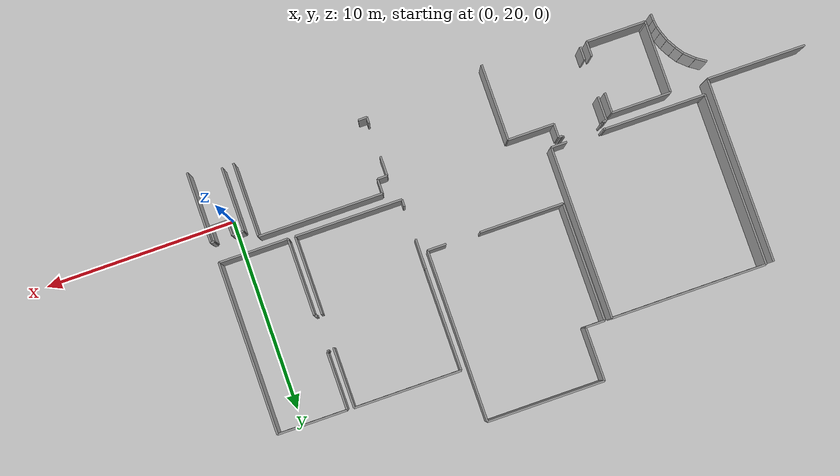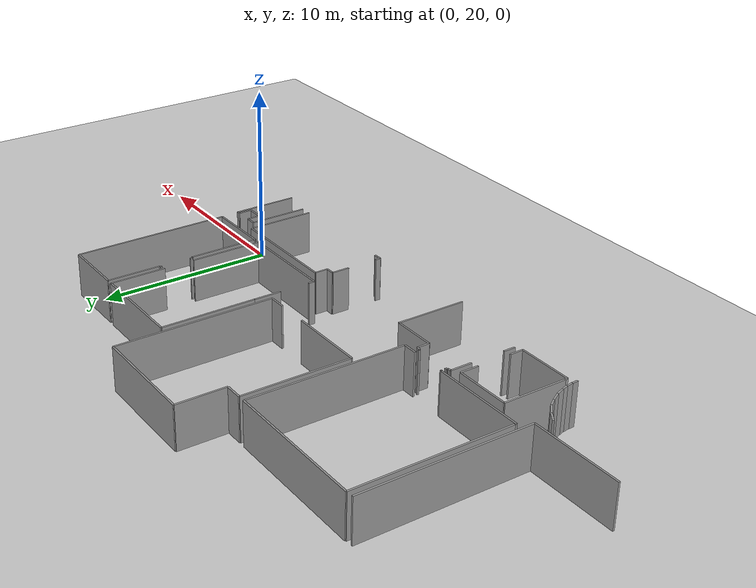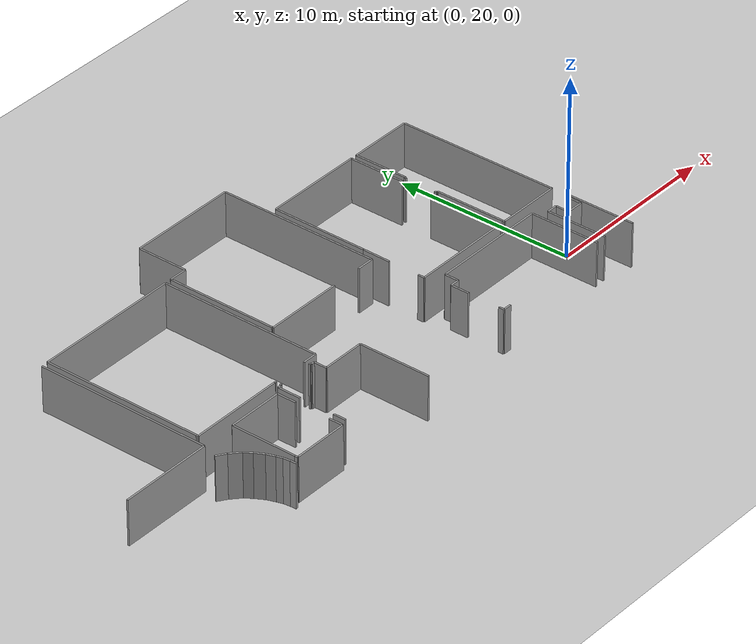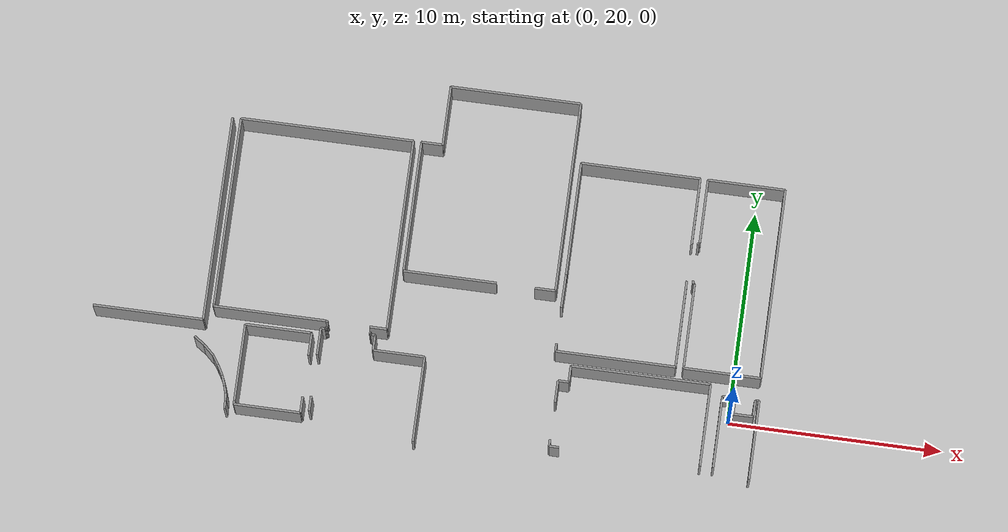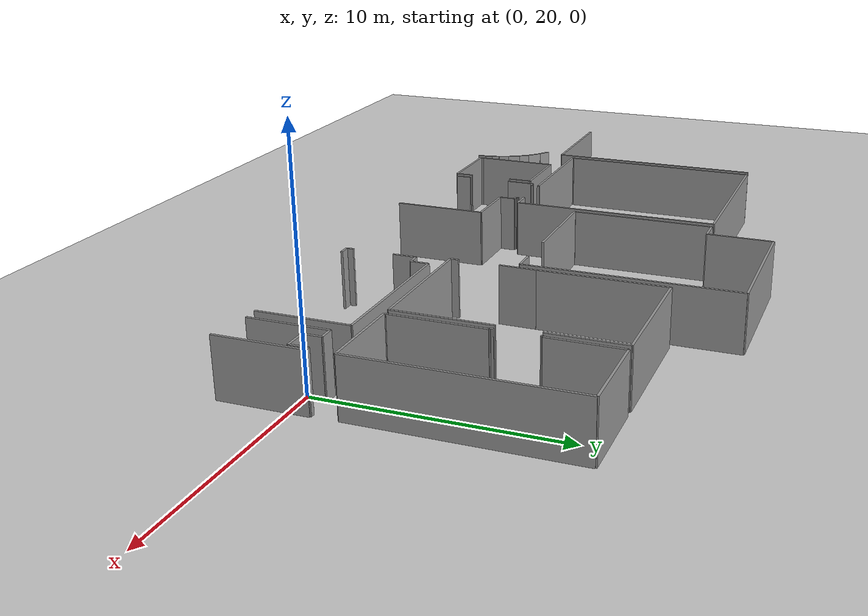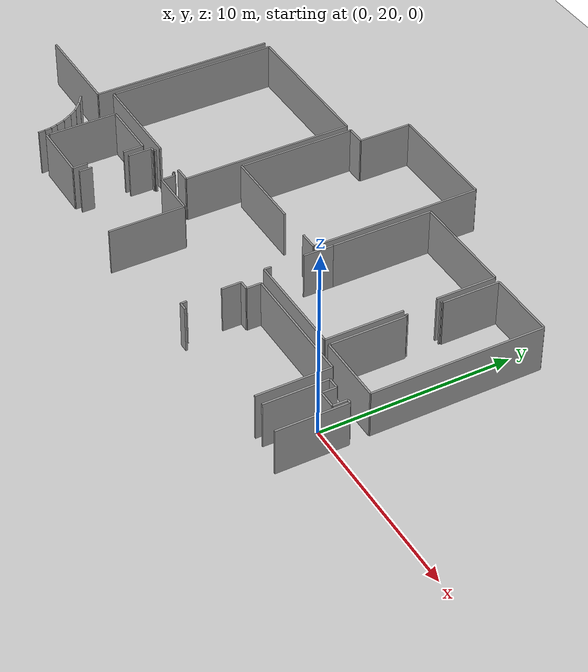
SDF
<sdf version="1.6">
 <world name="default">
  <model name="ground_plane">
   <static>1</static>
   <link name="link">
    <collision name="collision">
     <geometry><plane><normal>0 0 1</normal><size>100 100</size></plane></geometry>
     <surface><friction><ode><mu>100</mu><mu2>50</mu2></ode></friction></surface>
    </collision>
    <visual name="visual">
     <cast_shadows>0</cast_shadows>
     <geometry><plane><normal>0 0 1</normal><size>100 100</size></plane></geometry>
     <material>
      <script><uri>file://media/materials/scripts/gazebo.material</uri><name>Gazebo/Grey</name></script>
     </material>
    </visual>
   </link>
  </model>
  <model name="0510032267_A_40_1_101">
   <static>1</static>
   <link name="Wall_69">
    <collision name="Wall_69_Collision">
     <geometry><box><size>9.66202606447 0.1 2.5</size></box></geometry>
     <pose>4.83101303223 0 1.25 0 0 0</pose>
    </collision>
    <visual name="Wall_69_Visual">
     <pose>4.83101303223 0 1.25 0 0 0</pose>
     <geometry><box><size>9.66202606447 0.1 2.5</size></box></geometry>
     <material>
      <script><uri>file://media/materials/scripts/gazebo.material</uri><name>Gazebo/Grey</name></script>
      <ambient>1 1 1 1</ambient>
     </material>
    </visual>
    <pose>23.0193354895 -2.80444023663 0 0 0 -1.57079632679</pose>
   </link>
   <link name="Wall_70">
    <collision name="Wall_70_Collision">
     <geometry><box><size>5.16892342689 0.1 2.5</size></box></geometry>
     <pose>2.58446171344 0 1.25 0 0 0</pose>
    </collision>
    <visual name="Wall_70_Visual">
     <pose>2.58446171344 0 1.25 0 0 0</pose>
     <geometry><box><size>5.16892342689 0.1 2.5</size></box></geometry>
     <material>
      <script><uri>file://media/materials/scripts/gazebo.material</uri><name>Gazebo/Grey</name></script>
      <ambient>1 1 1 1</ambient>
     </material>
    </visual>
    <pose>23.0193354895 -12.4664663011 0 0 0 3.14159265359</pose>
   </link>
   <link name="Wall_175">
    <collision name="Wall_175_Collision">
     <geometry><box><size>0.58205688497 0.1 2.5</size></box></geometry>
     <pose>0.291028442485 0 1.25 0 0 0</pose>
    </collision>
    <visual name="Wall_175_Visual">
     <pose>0.291028442485 0 1.25 0 0 0</pose>
     <geometry><box><size>0.58205688497 0.1 2.5</size></box></geometry>
     <material>
      <script><uri>file://media/materials/scripts/gazebo.material</uri><name>Gazebo/Grey</name></script>
      <ambient>1 1 1 1</ambient>
     </material>
    </visual>
    <pose>22.7456013826 -13.30634964 0 0 0 -0.590727557442</pose>
   </link>
   <link name="Wall_176">
    <collision name="Wall_176_Collision">
     <geometry><box><size>0.67165126885 0.1 2.5</size></box></geometry>
     <pose>0.335825634425 0 1.25 0 0 0</pose>
    </collision>
    <visual name="Wall_176_Visual">
     <pose>0.335825634425 0 1.25 0 0 0</pose>
     <geometry><box><size>0.67165126885 0.1 2.5</size></box></geometry>
     <material>
      <script><uri>file://media/materials/scripts/gazebo.material</uri><name>Gazebo/Grey</name></script>
      <ambient>1 1 1 1</ambient>
     </material>
    </visual>
    <pose>23.2290203903 -13.6305352048 0 0 0 -0.738018700184</pose>
   </link>
   <link name="Wall_177">
    <collision name="Wall_177_Collision">
     <geometry><box><size>0.485003213324 0.1 2.5</size></box></geometry>
     <pose>0.242501606662 0 1.25 0 0 0</pose>
    </collision>
    <visual name="Wall_177_Visual">
     <pose>0.242501606662 0 1.25 0 0 0</pose>
     <geometry><box><size>0.485003213324 0.1 2.5</size></box></geometry>
     <material>
      <script><uri>file://media/materials/scripts/gazebo.material</uri><name>Gazebo/Grey</name></script>
      <ambient>1 1 1 1</ambient>
     </material>
    </visual>
    <pose>23.7259100642 -14.0824379364 0 0 0 -0.974581698549</pose>
   </link>
   <link name="Wall_178">
    <collision name="Wall_178_Collision">
     <geometry><box><size>0.554077310362 0.1 2.5</size></box></geometry>
     <pose>0.277038655181 0 1.25 0 0 0</pose>
    </collision>
    <visual name="Wall_178_Visual">
     <pose>0.277038655181 0 1.25 0 0 0</pose>
     <geometry><box><size>0.554077310362 0.1 2.5</size></box></geometry>
     <material>
      <script><uri>file://media/materials/scripts/gazebo.material</uri><name>Gazebo/Grey</name></script>
      <ambient>1 1 1 1</ambient>
     </material>
    </visual>
    <pose>23.9982462717 -14.4837621284 0 0 0 -1.05697006791</pose>
   </link>
   <link name="Wall_179">
    <collision name="Wall_179_Collision">
     <geometry><box><size>0.488178201221 0.1 2.5</size></box></geometry>
     <pose>0.244089100611 0 1.25 0 0 0</pose>
    </collision>
    <visual name="Wall_179_Visual">
     <pose>0.244089100611 0 1.25 0 0 0</pose>
     <geometry><box><size>0.488178201221 0.1 2.5</size></box></geometry>
     <material>
      <script><uri>file://media/materials/scripts/gazebo.material</uri><name>Gazebo/Grey</name></script>
      <ambient>1 1 1 1</ambient>
     </material>
    </visual>
    <pose>24.2705824792 -14.9662915637 0 0 0 -1.22113570309</pose>
   </link>
   <link name="Wall_180">
    <collision name="Wall_180_Collision">
     <geometry><box><size>0.353691203894 0.1 2.5</size></box></geometry>
     <pose>0.176845601947 0 1.25 0 0 0</pose>
    </collision>
    <visual name="Wall_180_Visual">
     <pose>0.176845601947 0 1.25 0 0 0</pose>
     <geometry><box><size>0.353691203894 0.1 2.5</size></box></geometry>
     <material>
      <script><uri>file://media/materials/scripts/gazebo.material</uri><name>Gazebo/Grey</name></script>
      <ambient>1 1 1 1</ambient>
     </material>
    </visual>
    <pose>24.4378220728 -15.4249296285 0 0 0 -1.28336607902</pose>
   </link>
   <link name="Wall_181">
    <collision name="Wall_181_Collision">
     <geometry><box><size>0.365604588367 0.1 2.5</size></box></geometry>
     <pose>0.182802294183 0 1.25 0 0 0</pose>
    </collision>
    <visual name="Wall_181_Visual">
     <pose>0.182802294183 0 1.25 0 0 0</pose>
     <geometry><box><size>0.365604588367 0.1 2.5</size></box></geometry>
     <material>
      <script><uri>file://media/materials/scripts/gazebo.material</uri><name>Gazebo/Grey</name></script>
      <ambient>1 1 1 1</ambient>
     </material>
    </visual>
    <pose>24.5380895799 -15.7641108407 0 0 0 -1.45303777016</pose>
   </link>
   <link name="Wall_182">
    <collision name="Wall_182_Collision">
     <geometry><box><size>0.349007901591 0.1 2.5</size></box></geometry>
     <pose>0.174503950795 0 1.25 0 0 0</pose>
    </collision>
    <visual name="Wall_182_Visual">
     <pose>0.174503950795 0 1.25 0 0 0</pose>
     <geometry><box><size>0.349007901591 0.1 2.5</size></box></geometry>
     <material>
      <script><uri>file://media/materials/scripts/gazebo.material</uri><name>Gazebo/Grey</name></script>
      <ambient>1 1 1 1</ambient>
     </material>
    </visual>
    <pose>24.5810432142 -16.1271834235 0 0 0 -1.52963882398</pose>
   </link>
   <link name="Wall_190">
    <collision name="Wall_190_Collision">
     <geometry><box><size>3.63199664504 0.1 2.5</size></box></geometry>
     <pose>1.81599832252 0 1.25 0 0 0</pose>
    </collision>
    <visual name="Wall_190_Visual">
     <pose>1.81599832252 0 1.25 0 0 0</pose>
     <geometry><box><size>3.63199664504 0.1 2.5</size></box></geometry>
     <material>
      <script><uri>file://media/materials/scripts/gazebo.material</uri><name>Gazebo/Grey</name></script>
      <ambient>1 1 1 1</ambient>
     </material>
    </visual>
    <pose>24.9908818839 -16.0631342174 0 0 0 1.57079632679</pose>
   </link>
   <link name="Wall_191">
    <collision name="Wall_191_Collision">
     <geometry><box><size>3.10841980188 0.1 2.5</size></box></geometry>
     <pose>1.55420990094 0 1.25 0 0 0</pose>
    </collision>
    <visual name="Wall_191_Visual">
     <pose>1.55420990094 0 1.25 0 0 0</pose>
     <geometry><box><size>3.10841980188 0.1 2.5</size></box></geometry>
     <material>
      <script><uri>file://media/materials/scripts/gazebo.material</uri><name>Gazebo/Grey</name></script>
      <ambient>1 1 1 1</ambient>
     </material>
    </visual>
    <pose>24.9908818839 -12.4311375724 0 0 0 0.0</pose>
   </link>
   <link name="Wall_192">
    <collision name="Wall_192_Collision">
     <geometry><box><size>1.05515983708 0.1 2.5</size></box></geometry>
     <pose>0.527579918541 0 1.25 0 0 0</pose>
    </collision>
    <visual name="Wall_192_Visual">
     <pose>0.527579918541 0 1.25 0 0 0</pose>
     <geometry><box><size>1.05515983708 0.1 2.5</size></box></geometry>
     <material>
      <script><uri>file://media/materials/scripts/gazebo.material</uri><name>Gazebo/Grey</name></script>
      <ambient>1 1 1 1</ambient>
     </material>
    </visual>
    <pose>28.0993016857 -12.4311375724 0 0 0 -1.57079632679</pose>
   </link>
   <link name="Wall_193">
    <collision name="Wall_193_Collision">
     <geometry><box><size>0.770242535535 0.1 2.5</size></box></geometry>
     <pose>0.385121267768 0 1.25 0 0 0</pose>
    </collision>
    <visual name="Wall_193_Visual">
     <pose>0.385121267768 0 1.25 0 0 0</pose>
     <geometry><box><size>0.770242535535 0.1 2.5</size></box></geometry>
     <material>
      <script><uri>file://media/materials/scripts/gazebo.material</uri><name>Gazebo/Grey</name></script>
      <ambient>1 1 1 1</ambient>
     </material>
    </visual>
    <pose>28.0993016857 -15.4455168733 0 0 0 -1.57079632679</pose>
   </link>
   <link name="Wall_194">
    <collision name="Wall_194_Collision">
     <geometry><box><size>3.10841980188 0.1 2.5</size></box></geometry>
     <pose>1.55420990094 0 1.25 0 0 0</pose>
    </collision>
    <visual name="Wall_194_Visual">
     <pose>1.55420990094 0 1.25 0 0 0</pose>
     <geometry><box><size>3.10841980188 0.1 2.5</size></box></geometry>
     <material>
      <script><uri>file://media/materials/scripts/gazebo.material</uri><name>Gazebo/Grey</name></script>
      <ambient>1 1 1 1</ambient>
     </material>
    </visual>
    <pose>28.0993016857 -16.2157594088 0 0 0 3.14159265359</pose>
   </link>
   <link name="Wall_195">
    <collision name="Wall_195_Collision">
     <geometry><box><size>0.152625191417 0.1 2.5</size></box></geometry>
     <pose>0.0763125957084 0 1.25 0 0 0</pose>
    </collision>
    <visual name="Wall_195_Visual">
     <pose>0.0763125957084 0 1.25 0 0 0</pose>
     <geometry><box><size>0.152625191417 0.1 2.5</size></box></geometry>
     <material>
      <script><uri>file://media/materials/scripts/gazebo.material</uri><name>Gazebo/Grey</name></script>
      <ambient>1 1 1 1</ambient>
     </material>
    </visual>
    <pose>24.9908818839 -16.2157594088 0 0 0 1.57079632679</pose>
   </link>
   <link name="Wall_196">
    <collision name="Wall_196_Collision">
     <geometry><box><size>8.88352321466 0.1 2.5</size></box></geometry>
     <pose>4.44176160733 0 1.25 0 0 0</pose>
    </collision>
    <visual name="Wall_196_Visual">
     <pose>4.44176160733 0 1.25 0 0 0</pose>
     <geometry><box><size>8.88352321466 0.1 2.5</size></box></geometry>
     <material>
      <script><uri>file://media/materials/scripts/gazebo.material</uri><name>Gazebo/Grey</name></script>
      <ambient>1 1 1 1</ambient>
     </material>
    </visual>
    <pose>23.4165930651 -11.6743657032 0 0 0 1.57079632679</pose>
   </link>
   <link name="Wall_197">
    <collision name="Wall_197_Collision">
     <geometry><box><size>8.11353484264 0.1 2.5</size></box></geometry>
     <pose>4.05676742132 0 1.25 0 0 0</pose>
    </collision>
    <visual name="Wall_197_Visual">
     <pose>4.05676742132 0 1.25 0 0 0</pose>
     <geometry><box><size>8.11353484264 0.1 2.5</size></box></geometry>
     <material>
      <script><uri>file://media/materials/scripts/gazebo.material</uri><name>Gazebo/Grey</name></script>
      <ambient>1 1 1 1</ambient>
     </material>
    </visual>
    <pose>23.4165930651 -2.79084248851 0 0 0 0.0</pose>
   </link>
   <link name="Wall_198">
    <collision name="Wall_198_Collision">
     <geometry><box><size>8.99840512394 0.1 2.5</size></box></geometry>
     <pose>4.49920256197 0 1.25 0 0 0</pose>
    </collision>
    <visual name="Wall_198_Visual">
     <pose>4.49920256197 0 1.25 0 0 0</pose>
     <geometry><box><size>8.99840512394 0.1 2.5</size></box></geometry>
     <material>
      <script><uri>file://media/materials/scripts/gazebo.material</uri><name>Gazebo/Grey</name></script>
      <ambient>1 1 1 1</ambient>
     </material>
    </visual>
    <pose>31.5301279078 -2.79084248851 0 0 0 -1.57079632679</pose>
   </link>
   <link name="Wall_199">
    <collision name="Wall_199_Collision">
     <geometry><box><size>0.816754458981 0.1 2.5</size></box></geometry>
     <pose>0.408377229491 0 1.25 0 0 0</pose>
    </collision>
    <visual name="Wall_199_Visual">
     <pose>0.408377229491 0 1.25 0 0 0</pose>
     <geometry><box><size>0.816754458981 0.1 2.5</size></box></geometry>
     <material>
      <script><uri>file://media/materials/scripts/gazebo.material</uri><name>Gazebo/Grey</name></script>
      <ambient>1 1 1 1</ambient>
     </material>
    </visual>
    <pose>31.5301279078 -11.7892476125 0 0 0 3.14159265359</pose>
   </link>
   <link name="Wall_200">
    <collision name="Wall_200_Collision">
     <geometry><box><size>0.0988696077622 0.1 2.5</size></box></geometry>
     <pose>0.0494348038811 0 1.25 0 0 0</pose>
    </collision>
    <visual name="Wall_200_Visual">
     <pose>0.0494348038811 0 1.25 0 0 0</pose>
     <geometry><box><size>0.0988696077622 0.1 2.5</size></box></geometry>
     <material>
      <script><uri>file://media/materials/scripts/gazebo.material</uri><name>Gazebo/Grey</name></script>
      <ambient>1 1 1 1</ambient>
     </material>
    </visual>
    <pose>28.7725808399 -11.7892476125 0 0 0 3.14159265359</pose>
   </link>
   <link name="Wall_201">
    <collision name="Wall_201_Collision">
     <geometry><box><size>0.0157581379981 0.1 2.5</size></box></geometry>
     <pose>0.00787906899904 0 1.25 0 0 0</pose>
    </collision>
    <visual name="Wall_201_Visual">
     <pose>0.00787906899904 0 1.25 0 0 0</pose>
     <geometry><box><size>0.0157581379981 0.1 2.5</size></box></geometry>
     <material>
      <script><uri>file://media/materials/scripts/gazebo.material</uri><name>Gazebo/Grey</name></script>
      <ambient>1 1 1 1</ambient>
     </material>
    </visual>
    <pose>28.6737112321 -11.7892476125 0 0 0 1.57079632679</pose>
   </link>
   <link name="Wall_202">
    <collision name="Wall_202_Collision">
     <geometry><box><size>5.2630910096 0.1 2.5</size></box></geometry>
     <pose>2.6315455048 0 1.25 0 0 0</pose>
    </collision>
    <visual name="Wall_202_Visual">
     <pose>2.6315455048 0 1.25 0 0 0</pose>
     <geometry><box><size>5.2630910096 0.1 2.5</size></box></geometry>
     <material>
      <script><uri>file://media/materials/scripts/gazebo.material</uri><name>Gazebo/Grey</name></script>
      <ambient>1 1 1 1</ambient>
     </material>
    </visual>
    <pose>28.6737112321 -11.7734894745 0 0 0 3.14159265359</pose>
   </link>
   <link name="Wall_203">
    <collision name="Wall_203_Collision">
     <geometry><box><size>0.0993035592589 0.1 2.5</size></box></geometry>
     <pose>0.0496517796294 0 1.25 0 0 0</pose>
    </collision>
    <visual name="Wall_203_Visual">
     <pose>0.0496517796294 0 1.25 0 0 0</pose>
     <geometry><box><size>0.0993035592589 0.1 2.5</size></box></geometry>
     <material>
      <script><uri>file://media/materials/scripts/gazebo.material</uri><name>Gazebo/Grey</name></script>
      <ambient>1 1 1 1</ambient>
     </material>
    </visual>
    <pose>23.4106202225 -11.7734894745 0 0 0 1.51061268511</pose>
   </link>
   <link name="Wall_204">
    <collision name="Wall_204_Collision">
     <geometry><box><size>0.45596934788 0.1 2.5</size></box></geometry>
     <pose>0.22798467394 0 1.25 0 0 0</pose>
    </collision>
    <visual name="Wall_204_Visual">
     <pose>0.22798467394 0 1.25 0 0 0</pose>
     <geometry><box><size>0.45596934788 0.1 2.5</size></box></geometry>
     <material>
      <script><uri>file://media/materials/scripts/gazebo.material</uri><name>Gazebo/Grey</name></script>
      <ambient>1 1 1 1</ambient>
     </material>
    </visual>
    <pose>40.1693999835 -16.2302467292 0 0 0 3.14159265359</pose>
   </link>
   <link name="Wall_205">
    <collision name="Wall_205_Collision">
     <geometry><box><size>0.302200420641 0.1 2.5</size></box></geometry>
     <pose>0.15110021032 0 1.25 0 0 0</pose>
    </collision>
    <visual name="Wall_205_Visual">
     <pose>0.15110021032 0 1.25 0 0 0</pose>
     <geometry><box><size>0.302200420641 0.1 2.5</size></box></geometry>
     <material>
      <script><uri>file://media/materials/scripts/gazebo.material</uri><name>Gazebo/Grey</name></script>
      <ambient>1 1 1 1</ambient>
     </material>
    </visual>
    <pose>39.7134306356 -16.2302467292 0 0 0 1.57079632679</pose>
   </link>
   <link name="Wall_206">
    <collision name="Wall_206_Collision">
     <geometry><box><size>1.01639990088 0.1 2.5</size></box></geometry>
     <pose>0.508199950438 0 1.25 0 0 0</pose>
    </collision>
    <visual name="Wall_206_Visual">
     <pose>0.508199950438 0 1.25 0 0 0</pose>
     <geometry><box><size>1.01639990088 0.1 2.5</size></box></geometry>
     <material>
      <script><uri>file://media/materials/scripts/gazebo.material</uri><name>Gazebo/Grey</name></script>
      <ambient>1 1 1 1</ambient>
     </material>
    </visual>
    <pose>39.7134306356 -14.1524599851 0 0 0 1.57079632679</pose>
   </link>
   <link name="Wall_207">
    <collision name="Wall_207_Collision">
     <geometry><box><size>0.503370843632 0.1 2.5</size></box></geometry>
     <pose>0.251685421816 0 1.25 0 0 0</pose>
    </collision>
    <visual name="Wall_207_Visual">
     <pose>0.251685421816 0 1.25 0 0 0</pose>
     <geometry><box><size>0.503370843632 0.1 2.5</size></box></geometry>
     <material>
      <script><uri>file://media/materials/scripts/gazebo.material</uri><name>Gazebo/Grey</name></script>
      <ambient>1 1 1 1</ambient>
     </material>
    </visual>
    <pose>39.7134306356 -13.1360600843 0 0 0 0.0</pose>
   </link>
   <link name="Wall_208">
    <collision name="Wall_208_Collision">
     <geometry><box><size>0.764015529391 0.1 2.5</size></box></geometry>
     <pose>0.382007764695 0 1.25 0 0 0</pose>
    </collision>
    <visual name="Wall_208_Visual">
     <pose>0.382007764695 0 1.25 0 0 0</pose>
     <geometry><box><size>0.764015529391 0.1 2.5</size></box></geometry>
     <material>
      <script><uri>file://media/materials/scripts/gazebo.material</uri><name>Gazebo/Grey</name></script>
      <ambient>1 1 1 1</ambient>
     </material>
    </visual>
    <pose>40.2168014792 -13.1360600843 0 0 0 1.57079632679</pose>
   </link>
   <link name="Wall_209">
    <collision name="Wall_209_Collision">
     <geometry><box><size>6.52704617516 0.1 2.5</size></box></geometry>
     <pose>3.26352308758 0 1.25 0 0 0</pose>
    </collision>
    <visual name="Wall_209_Visual">
     <pose>3.26352308758 0 1.25 0 0 0</pose>
     <geometry><box><size>6.52704617516 0.1 2.5</size></box></geometry>
     <material>
      <script><uri>file://media/materials/scripts/gazebo.material</uri><name>Gazebo/Grey</name></script>
      <ambient>1 1 1 1</ambient>
     </material>
    </visual>
    <pose>40.2168014792 -12.3720445549 0 0 0 0.0</pose>
   </link>
   <link name="Wall_210">
    <collision name="Wall_210_Collision">
     <geometry><box><size>3.8602354825 0.1 2.5</size></box></geometry>
     <pose>1.93011774125 0 1.25 0 0 0</pose>
    </collision>
    <visual name="Wall_210_Visual">
     <pose>1.93011774125 0 1.25 0 0 0</pose>
     <geometry><box><size>3.8602354825 0.1 2.5</size></box></geometry>
     <material>
      <script><uri>file://media/materials/scripts/gazebo.material</uri><name>Gazebo/Grey</name></script>
      <ambient>1 1 1 1</ambient>
     </material>
    </visual>
    <pose>46.7438476544 -12.3720445549 0 0 0 -1.57079632679</pose>
   </link>
   <link name="Wall_212">
    <collision name="Wall_212_Collision">
     <geometry><box><size>6.10729512832 0.1 2.5</size></box></geometry>
     <pose>3.05364756416 0 1.25 0 0 0</pose>
    </collision>
    <visual name="Wall_212_Visual">
     <pose>3.05364756416 0 1.25 0 0 0</pose>
     <geometry><box><size>6.10729512832 0.1 2.5</size></box></geometry>
     <material>
      <script><uri>file://media/materials/scripts/gazebo.material</uri><name>Gazebo/Grey</name></script>
      <ambient>1 1 1 1</ambient>
     </material>
    </visual>
    <pose>31.9162022887 -8.90233131485 0 0 0 1.57079632679</pose>
   </link>
   <link name="Wall_213">
    <collision name="Wall_213_Collision">
     <geometry><box><size>0.997718882443 0.1 2.5</size></box></geometry>
     <pose>0.498859441222 0 1.25 0 0 0</pose>
    </collision>
    <visual name="Wall_213_Visual">
     <pose>0.498859441222 0 1.25 0 0 0</pose>
     <geometry><box><size>0.997718882443 0.1 2.5</size></box></geometry>
     <material>
      <script><uri>file://media/materials/scripts/gazebo.material</uri><name>Gazebo/Grey</name></script>
      <ambient>1 1 1 1</ambient>
     </material>
    </visual>
    <pose>31.9162022887 -2.79503618653 0 0 0 0.0</pose>
   </link>
   <link name="Wall_214">
    <collision name="Wall_214_Collision">
     <geometry><box><size>2.79503618653 0.1 2.5</size></box></geometry>
     <pose>1.39751809327 0 1.25 0 0 0</pose>
    </collision>
    <visual name="Wall_214_Visual">
     <pose>1.39751809327 0 1.25 0 0 0</pose>
     <geometry><box><size>2.79503618653 0.1 2.5</size></box></geometry>
     <material>
      <script><uri>file://media/materials/scripts/gazebo.material</uri><name>Gazebo/Grey</name></script>
      <ambient>1 1 1 1</ambient>
     </material>
    </visual>
    <pose>32.9139211712 -2.79503618653 0 0 0 1.57079632679</pose>
   </link>
   <link name="Wall_215">
    <collision name="Wall_215_Collision">
     <geometry><box><size>6.12318034808 0.1 2.5</size></box></geometry>
     <pose>3.06159017404 0 1.25 0 0 0</pose>
    </collision>
    <visual name="Wall_215_Visual">
     <pose>3.06159017404 0 1.25 0 0 0</pose>
     <geometry><box><size>6.12318034808 0.1 2.5</size></box></geometry>
     <material>
      <script><uri>file://media/materials/scripts/gazebo.material</uri><name>Gazebo/Grey</name></script>
      <ambient>1 1 1 1</ambient>
     </material>
    </visual>
    <pose>32.9139211712 -0.0 0 0 0 0.0</pose>
   </link>
   <link name="Wall_216">
    <collision name="Wall_216_Collision">
     <geometry><box><size>8.95710355257 0.1 2.5</size></box></geometry>
     <pose>4.47855177629 0 1.25 0 0 0</pose>
    </collision>
    <visual name="Wall_216_Visual">
     <pose>4.47855177629 0 1.25 0 0 0</pose>
     <geometry><box><size>8.95710355257 0.1 2.5</size></box></geometry>
     <material>
      <script><uri>file://media/materials/scripts/gazebo.material</uri><name>Gazebo/Grey</name></script>
      <ambient>1 1 1 1</ambient>
     </material>
    </visual>
    <pose>39.0371015193 -0.0 0 0 0 -1.57079632679</pose>
   </link>
   <link name="Wall_217">
    <collision name="Wall_217_Collision">
     <geometry><box><size>0.967473424027 0.1 2.5</size></box></geometry>
     <pose>0.483736712014 0 1.25 0 0 0</pose>
    </collision>
    <visual name="Wall_217_Visual">
     <pose>0.483736712014 0 1.25 0 0 0</pose>
     <geometry><box><size>0.967473424027 0.1 2.5</size></box></geometry>
     <material>
      <script><uri>file://media/materials/scripts/gazebo.material</uri><name>Gazebo/Grey</name></script>
      <ambient>1 1 1 1</ambient>
     </material>
    </visual>
    <pose>39.0371015193 -8.95710355257 0 0 0 3.14159265359</pose>
   </link>
   <link name="Wall_218">
    <collision name="Wall_218_Collision">
     <geometry><box><size>4.37135831337 0.1 2.5</size></box></geometry>
     <pose>2.18567915669 0 1.25 0 0 0</pose>
    </collision>
    <visual name="Wall_218_Visual">
     <pose>2.18567915669 0 1.25 0 0 0</pose>
     <geometry><box><size>4.37135831337 0.1 2.5</size></box></geometry>
     <material>
      <script><uri>file://media/materials/scripts/gazebo.material</uri><name>Gazebo/Grey</name></script>
      <ambient>1 1 1 1</ambient>
     </material>
    </visual>
    <pose>36.2829856588 -8.95710355257 0 0 0 3.14159265359</pose>
   </link>
   <link name="Wall_219">
    <collision name="Wall_219_Collision">
     <geometry><box><size>0.0549629705426 0.1 2.5</size></box></geometry>
     <pose>0.0274814852713 0 1.25 0 0 0</pose>
    </collision>
    <visual name="Wall_219_Visual">
     <pose>0.0274814852713 0 1.25 0 0 0</pose>
     <geometry><box><size>0.0549629705426 0.1 2.5</size></box></geometry>
     <material>
      <script><uri>file://media/materials/scripts/gazebo.material</uri><name>Gazebo/Grey</name></script>
      <ambient>1 1 1 1</ambient>
     </material>
    </visual>
    <pose>31.9116273455 -8.95710355257 0 0 0 1.48746308262</pose>
   </link>
   <link name="Wall_220">
    <collision name="Wall_220_Collision">
     <geometry><box><size>5.33794216509 0.1 2.5</size></box></geometry>
     <pose>2.66897108255 0 1.25 0 0 0</pose>
    </collision>
    <visual name="Wall_220_Visual">
     <pose>2.66897108255 0 1.25 0 0 0</pose>
     <geometry><box><size>5.33794216509 0.1 2.5</size></box></geometry>
     <material>
      <script><uri>file://media/materials/scripts/gazebo.material</uri><name>Gazebo/Grey</name></script>
      <ambient>1 1 1 1</ambient>
     </material>
    </visual>
    <pose>39.4273695982 -8.13602831382 0 0 0 1.57079632679</pose>
   </link>
   <link name="Wall_221">
    <collision name="Wall_221_Collision">
     <geometry><box><size>5.59312233525 0.1 2.5</size></box></geometry>
     <pose>2.79656116763 0 1.25 0 0 0</pose>
    </collision>
    <visual name="Wall_221_Visual">
     <pose>2.79656116763 0 1.25 0 0 0</pose>
     <geometry><box><size>5.59312233525 0.1 2.5</size></box></geometry>
     <material>
      <script><uri>file://media/materials/scripts/gazebo.material</uri><name>Gazebo/Grey</name></script>
      <ambient>1 1 1 1</ambient>
     </material>
    </visual>
    <pose>39.4273695982 -2.79808614872 0 0 0 0.0</pose>
   </link>
   <link name="Wall_222">
    <collision name="Wall_222_Collision">
     <geometry><box><size>3.14616308402 0.1 2.5</size></box></geometry>
     <pose>1.57308154201 0 1.25 0 0 0</pose>
    </collision>
    <visual name="Wall_222_Visual">
     <pose>1.57308154201 0 1.25 0 0 0</pose>
     <geometry><box><size>3.14616308402 0.1 2.5</size></box></geometry>
     <material>
      <script><uri>file://media/materials/scripts/gazebo.material</uri><name>Gazebo/Grey</name></script>
      <ambient>1 1 1 1</ambient>
     </material>
    </visual>
    <pose>45.0204919335 -2.79808614872 0 0 0 -1.57079632679</pose>
   </link>
   <link name="Wall_223">
    <collision name="Wall_223_Collision">
     <geometry><box><size>4.08796599292 0.1 2.5</size></box></geometry>
     <pose>2.04398299646 0 1.25 0 0 0</pose>
    </collision>
    <visual name="Wall_223_Visual">
     <pose>2.04398299646 0 1.25 0 0 0</pose>
     <geometry><box><size>4.08796599292 0.1 2.5</size></box></geometry>
     <material>
      <script><uri>file://media/materials/scripts/gazebo.material</uri><name>Gazebo/Grey</name></script>
      <ambient>1 1 1 1</ambient>
     </material>
    </visual>
    <pose>45.0204919335 -7.68603180856 0 0 0 -1.57079632679</pose>
   </link>
   <link name="Wall_224">
    <collision name="Wall_224_Collision">
     <geometry><box><size>5.61015129083 0.1 2.5</size></box></geometry>
     <pose>2.80507564542 0 1.25 0 0 0</pose>
    </collision>
    <visual name="Wall_224_Visual">
     <pose>2.80507564542 0 1.25 0 0 0</pose>
     <geometry><box><size>5.61015129083 0.1 2.5</size></box></geometry>
     <material>
      <script><uri>file://media/materials/scripts/gazebo.material</uri><name>Gazebo/Grey</name></script>
      <ambient>1 1 1 1</ambient>
     </material>
    </visual>
    <pose>45.0204919335 -11.7739978015 0 0 0 3.14159265359</pose>
   </link>
   <link name="Wall_225">
    <collision name="Wall_225_Collision">
     <geometry><box><size>0.357353903634 0.1 2.5</size></box></geometry>
     <pose>0.178676951817 0 1.25 0 0 0</pose>
    </collision>
    <visual name="Wall_225_Visual">
     <pose>0.178676951817 0 1.25 0 0 0</pose>
     <geometry><box><size>0.357353903634 0.1 2.5</size></box></geometry>
     <material>
      <script><uri>file://media/materials/scripts/gazebo.material</uri><name>Gazebo/Grey</name></script>
      <ambient>1 1 1 1</ambient>
     </material>
    </visual>
    <pose>39.4103406427 -11.7739978015 0 0 0 1.57079632679</pose>
   </link>
   <link name="Wall_226">
    <collision name="Wall_226_Collision">
     <geometry><box><size>1.55646344881 0.1 2.5</size></box></geometry>
     <pose>0.778231724407 0 1.25 0 0 0</pose>
    </collision>
    <visual name="Wall_226_Visual">
     <pose>0.778231724407 0 1.25 0 0 0</pose>
     <geometry><box><size>1.55646344881 0.1 2.5</size></box></geometry>
     <material>
      <script><uri>file://media/materials/scripts/gazebo.material</uri><name>Gazebo/Grey</name></script>
      <ambient>1 1 1 1</ambient>
     </material>
    </visual>
    <pose>39.4103406427 -9.69239860464 0 0 0 1.55985530833</pose>
   </link>
   <link name="Wall_227">
    <collision name="Wall_227_Collision">
     <geometry><box><size>3.9092890411 0.1 2.5</size></box></geometry>
     <pose>1.95464452055 0 1.25 0 0 0</pose>
    </collision>
    <visual name="Wall_227_Visual">
     <pose>1.95464452055 0 1.25 0 0 0</pose>
     <geometry><box><size>3.9092890411 0.1 2.5</size></box></geometry>
     <material>
      <script><uri>file://media/materials/scripts/gazebo.material</uri><name>Gazebo/Grey</name></script>
      <ambient>1 1 1 1</ambient>
     </material>
    </visual>
    <pose>45.3995768177 -11.6854218161 0 0 0 1.57079632679</pose>
   </link>
   <link name="Wall_228">
    <collision name="Wall_228_Collision">
     <geometry><box><size>0.0794260987806 0.1 2.5</size></box></geometry>
     <pose>0.0397130493903 0 1.25 0 0 0</pose>
    </collision>
    <visual name="Wall_228_Visual">
     <pose>0.0397130493903 0 1.25 0 0 0</pose>
     <geometry><box><size>0.0794260987806 0.1 2.5</size></box></geometry>
     <material>
      <script><uri>file://media/materials/scripts/gazebo.material</uri><name>Gazebo/Grey</name></script>
      <ambient>1 1 1 1</ambient>
     </material>
    </visual>
    <pose>45.3995768177 -7.77613277502 0 0 0 3.14159265359</pose>
   </link>
   <link name="Wall_229">
    <collision name="Wall_229_Collision">
     <geometry><box><size>0.133690009468 0.1 2.5</size></box></geometry>
     <pose>0.0668450047338 0 1.25 0 0 0</pose>
    </collision>
    <visual name="Wall_229_Visual">
     <pose>0.0668450047338 0 1.25 0 0 0</pose>
     <geometry><box><size>0.133690009468 0.1 2.5</size></box></geometry>
     <material>
      <script><uri>file://media/materials/scripts/gazebo.material</uri><name>Gazebo/Grey</name></script>
      <ambient>1 1 1 1</ambient>
     </material>
    </visual>
    <pose>45.320150719 -7.77613277502 0 0 0 1.57079632679</pose>
   </link>
   <link name="Wall_230">
    <collision name="Wall_230_Collision">
     <geometry><box><size>0.0974717084236 0.1 2.5</size></box></geometry>
     <pose>0.0487358542118 0 1.25 0 0 0</pose>
    </collision>
    <visual name="Wall_230_Visual">
     <pose>0.0487358542118 0 1.25 0 0 0</pose>
     <geometry><box><size>0.0974717084236 0.1 2.5</size></box></geometry>
     <material>
      <script><uri>file://media/materials/scripts/gazebo.material</uri><name>Gazebo/Grey</name></script>
      <ambient>1 1 1 1</ambient>
     </material>
    </visual>
    <pose>45.320150719 -5.9237890697 0 0 0 1.57079632679</pose>
   </link>
   <link name="Wall_231">
    <collision name="Wall_231_Collision">
     <geometry><box><size>0.0639221242987 0.1 2.5</size></box></geometry>
     <pose>0.0319610621493 0 1.25 0 0 0</pose>
    </collision>
    <visual name="Wall_231_Visual">
     <pose>0.0319610621493 0 1.25 0 0 0</pose>
     <geometry><box><size>0.0639221242987 0.1 2.5</size></box></geometry>
     <material>
      <script><uri>file://media/materials/scripts/gazebo.material</uri><name>Gazebo/Grey</name></script>
      <ambient>1 1 1 1</ambient>
     </material>
    </visual>
    <pose>45.320150719 -5.82631736127 0 0 0 0.0</pose>
   </link>
   <link name="Wall_232">
    <collision name="Wall_232_Collision">
     <geometry><box><size>3.01628552729 0.1 2.5</size></box></geometry>
     <pose>1.50814276365 0 1.25 0 0 0</pose>
    </collision>
    <visual name="Wall_232_Visual">
     <pose>1.50814276365 0 1.25 0 0 0</pose>
     <geometry><box><size>3.01628552729 0.1 2.5</size></box></geometry>
     <material>
      <script><uri>file://media/materials/scripts/gazebo.material</uri><name>Gazebo/Grey</name></script>
      <ambient>1 1 1 1</ambient>
     </material>
    </visual>
    <pose>45.3840728433 -5.82631736127 0 0 0 1.57079632679</pose>
   </link>
   <link name="Wall_233">
    <collision name="Wall_233_Collision">
     <geometry><box><size>3.62983625515 0.1 2.5</size></box></geometry>
     <pose>1.81491812758 0 1.25 0 0 0</pose>
    </collision>
    <visual name="Wall_233_Visual">
     <pose>1.81491812758 0 1.25 0 0 0</pose>
     <geometry><box><size>3.62983625515 0.1 2.5</size></box></geometry>
     <material>
      <script><uri>file://media/materials/scripts/gazebo.material</uri><name>Gazebo/Grey</name></script>
      <ambient>1 1 1 1</ambient>
     </material>
    </visual>
    <pose>45.3840728433 -2.81003183398 0 0 0 0.0</pose>
   </link>
   <link name="Wall_234">
    <collision name="Wall_234_Collision">
     <geometry><box><size>8.97159087299 0.1 2.5</size></box></geometry>
     <pose>4.48579543649 0 1.25 0 0 0</pose>
    </collision>
    <visual name="Wall_234_Visual">
     <pose>4.48579543649 0 1.25 0 0 0</pose>
     <geometry><box><size>8.97159087299 0.1 2.5</size></box></geometry>
     <material>
      <script><uri>file://media/materials/scripts/gazebo.material</uri><name>Gazebo/Grey</name></script>
      <ambient>1 1 1 1</ambient>
     </material>
    </visual>
    <pose>49.0139090984 -2.81003183398 0 0 0 -1.57079632679</pose>
   </link>
   <link name="Wall_235">
    <collision name="Wall_235_Collision">
     <geometry><box><size>3.61801765166 0.1 2.5</size></box></geometry>
     <pose>1.80900882583 0 1.25 0 0 0</pose>
    </collision>
    <visual name="Wall_235_Visual">
     <pose>1.80900882583 0 1.25 0 0 0</pose>
     <geometry><box><size>3.61801765166 0.1 2.5</size></box></geometry>
     <material>
      <script><uri>file://media/materials/scripts/gazebo.material</uri><name>Gazebo/Grey</name></script>
      <ambient>1 1 1 1</ambient>
     </material>
    </visual>
    <pose>49.0139090984 -11.781622707 0 0 0 3.14159265359</pose>
   </link>
   <link name="Wall_236">
    <collision name="Wall_236_Collision">
     <geometry><box><size>0.0962714566125 0.1 2.5</size></box></geometry>
     <pose>0.0481357283063 0 1.25 0 0 0</pose>
    </collision>
    <visual name="Wall_236_Visual">
     <pose>0.0481357283063 0 1.25 0 0 0</pose>
     <geometry><box><size>0.0962714566125 0.1 2.5</size></box></geometry>
     <material>
      <script><uri>file://media/materials/scripts/gazebo.material</uri><name>Gazebo/Grey</name></script>
      <ambient>1 1 1 1</ambient>
     </material>
    </visual>
    <pose>45.3958914468 -11.781622707 0 0 0 1.53250593605</pose>
   </link>
   <link name="Wall_268">
    <collision name="Wall_268_Collision">
     <geometry><box><size>0.679760323804 0.1 2.5</size></box></geometry>
     <pose>0.339880161902 0 1.25 0 0 0</pose>
    </collision>
    <visual name="Wall_268_Visual">
     <pose>0.339880161902 0 1.25 0 0 0</pose>
     <geometry><box><size>0.679760323804 0.1 2.5</size></box></geometry>
     <material>
      <script><uri>file://media/materials/scripts/gazebo.material</uri><name>Gazebo/Grey</name></script>
      <ambient>1 1 1 1</ambient>
     </material>
    </visual>
    <pose>28.4888072742 -16.0614821545 0 0 0 1.57079632679</pose>
   </link>
   <link name="Wall_269">
    <collision name="Wall_269_Collision">
     <geometry><box><size>1.25976146754 0.1 2.5</size></box></geometry>
     <pose>0.62988073377 0 1.25 0 0 0</pose>
    </collision>
    <visual name="Wall_269_Visual">
     <pose>0.62988073377 0 1.25 0 0 0</pose>
     <geometry><box><size>1.25976146754 0.1 2.5</size></box></geometry>
     <material>
      <script><uri>file://media/materials/scripts/gazebo.material</uri><name>Gazebo/Grey</name></script>
      <ambient>1 1 1 1</ambient>
     </material>
    </visual>
    <pose>28.4888072742 -13.4092858641 0 0 0 1.57079632679</pose>
   </link>
   <link name="Wall_270">
    <collision name="Wall_270_Collision">
     <geometry><box><size>0.199010033105 0.1 2.5</size></box></geometry>
     <pose>0.0995050165524 0 1.25 0 0 0</pose>
    </collision>
    <visual name="Wall_270_Visual">
     <pose>0.0995050165524 0 1.25 0 0 0</pose>
     <geometry><box><size>0.199010033105 0.1 2.5</size></box></geometry>
     <material>
      <script><uri>file://media/materials/scripts/gazebo.material</uri><name>Gazebo/Grey</name></script>
      <ambient>1 1 1 1</ambient>
     </material>
    </visual>
    <pose>28.4888072742 -12.1495243965 0 0 0 0.0</pose>
   </link>
   <link name="Wall_271">
    <collision name="Wall_271_Collision">
     <geometry><box><size>0.0719282750558 0.1 2.5</size></box></geometry>
     <pose>0.0359641375279 0 1.25 0 0 0</pose>
    </collision>
    <visual name="Wall_271_Visual">
     <pose>0.0359641375279 0 1.25 0 0 0</pose>
     <geometry><box><size>0.0719282750558 0.1 2.5</size></box></geometry>
     <material>
      <script><uri>file://media/materials/scripts/gazebo.material</uri><name>Gazebo/Grey</name></script>
      <ambient>1 1 1 1</ambient>
     </material>
    </visual>
    <pose>28.6878173073 -12.1495243965 0 0 0 1.57079632679</pose>
   </link>
   <link name="Wall_272">
    <collision name="Wall_272_Collision">
     <geometry><box><size>0.101284161165 0.1 2.5</size></box></geometry>
     <pose>0.0506420805825 0 1.25 0 0 0</pose>
    </collision>
    <visual name="Wall_272_Visual">
     <pose>0.0506420805825 0 1.25 0 0 0</pose>
     <geometry><box><size>0.101284161165 0.1 2.5</size></box></geometry>
     <material>
      <script><uri>file://media/materials/scripts/gazebo.material</uri><name>Gazebo/Grey</name></script>
      <ambient>1 1 1 1</ambient>
     </material>
    </visual>
    <pose>28.6878173073 -12.0775961215 0 0 0 0.0</pose>
   </link>
   <link name="Wall_273">
    <collision name="Wall_273_Collision">
     <geometry><box><size>0.082984388006 0.1 2.5</size></box></geometry>
     <pose>0.041492194003 0 1.25 0 0 0</pose>
    </collision>
    <visual name="Wall_273_Visual">
     <pose>0.041492194003 0 1.25 0 0 0</pose>
     <geometry><box><size>0.082984388006 0.1 2.5</size></box></geometry>
     <material>
      <script><uri>file://media/materials/scripts/gazebo.material</uri><name>Gazebo/Grey</name></script>
      <ambient>1 1 1 1</ambient>
     </material>
    </visual>
    <pose>30.7428564167 -12.0775961215 0 0 0 0.0</pose>
   </link>
   <link name="Wall_274">
    <collision name="Wall_274_Collision">
     <geometry><box><size>0.0668450047338 0.1 2.5</size></box></geometry>
     <pose>0.0334225023669 0 1.25 0 0 0</pose>
    </collision>
    <visual name="Wall_274_Visual">
     <pose>0.0334225023669 0 1.25 0 0 0</pose>
     <geometry><box><size>0.0668450047338 0.1 2.5</size></box></geometry>
     <material>
      <script><uri>file://media/materials/scripts/gazebo.material</uri><name>Gazebo/Grey</name></script>
      <ambient>1 1 1 1</ambient>
     </material>
    </visual>
    <pose>30.8258408047 -12.0775961215 0 0 0 -1.57079632679</pose>
   </link>
   <link name="Wall_275">
    <collision name="Wall_275_Collision">
     <geometry><box><size>0.198755869589 0.1 2.5</size></box></geometry>
     <pose>0.0993779347944 0 1.25 0 0 0</pose>
    </collision>
    <visual name="Wall_275_Visual">
     <pose>0.0993779347944 0 1.25 0 0 0</pose>
     <geometry><box><size>0.198755869589 0.1 2.5</size></box></geometry>
     <material>
      <script><uri>file://media/materials/scripts/gazebo.material</uri><name>Gazebo/Grey</name></script>
      <ambient>1 1 1 1</ambient>
     </material>
    </visual>
    <pose>30.8258408047 -12.1444411262 0 0 0 0.0</pose>
   </link>
   <link name="Wall_276">
    <collision name="Wall_276_Collision">
     <geometry><box><size>0.70543083893 0.1 2.5</size></box></geometry>
     <pose>0.352715419465 0 1.25 0 0 0</pose>
    </collision>
    <visual name="Wall_276_Visual">
     <pose>0.352715419465 0 1.25 0 0 0</pose>
     <geometry><box><size>0.70543083893 0.1 2.5</size></box></geometry>
     <material>
      <script><uri>file://media/materials/scripts/gazebo.material</uri><name>Gazebo/Grey</name></script>
      <ambient>1 1 1 1</ambient>
     </material>
    </visual>
    <pose>31.0245966743 -12.1444411262 0 0 0 -1.57079632679</pose>
   </link>
   <link name="Wall_277">
    <collision name="Wall_277_Collision">
     <geometry><box><size>2.41391799414 0.1 2.5</size></box></geometry>
     <pose>1.20695899707 0 1.25 0 0 0</pose>
    </collision>
    <visual name="Wall_277_Visual">
     <pose>1.20695899707 0 1.25 0 0 0</pose>
     <geometry><box><size>2.41391799414 0.1 2.5</size></box></geometry>
     <material>
      <script><uri>file://media/materials/scripts/gazebo.material</uri><name>Gazebo/Grey</name></script>
      <ambient>1 1 1 1</ambient>
     </material>
    </visual>
    <pose>31.0245966743 -12.8498719651 0 0 0 0.0</pose>
   </link>
   <link name="Wall_278">
    <collision name="Wall_278_Collision">
     <geometry><box><size>3.98909638516 0.1 2.5</size></box></geometry>
     <pose>1.99454819258 0 1.25 0 0 0</pose>
    </collision>
    <visual name="Wall_278_Visual">
     <pose>1.99454819258 0 1.25 0 0 0</pose>
     <geometry><box><size>3.98909638516 0.1 2.5</size></box></geometry>
     <material>
      <script><uri>file://media/materials/scripts/gazebo.material</uri><name>Gazebo/Grey</name></script>
      <ambient>1 1 1 1</ambient>
     </material>
    </visual>
    <pose>33.4385146684 -12.8498719651 0 0 0 -1.57079632679</pose>
   </link>
   <link name="Wall_580">
    <collision name="Wall_580_Collision">
     <geometry><box><size>3.35152720503 0.1 2.5</size></box></geometry>
     <pose>1.67576360251 0 1.25 0 0 0</pose>
    </collision>
    <visual name="Wall_580_Visual">
     <pose>1.67576360251 0 1.25 0 0 0</pose>
     <geometry><box><size>3.35152720503 0.1 2.5</size></box></geometry>
     <material>
      <script><uri>file://media/materials/scripts/gazebo.material</uri><name>Gazebo/Grey</name></script>
      <ambient>1 1 1 1</ambient>
     </material>
    </visual>
    <pose>47.3565088099 -16.2094053209 0 0 0 1.57079632679</pose>
   </link>
   <link name="Wall_581">
    <collision name="Wall_581_Collision">
     <geometry><box><size>0.594996791186 0.1 2.5</size></box></geometry>
     <pose>0.297498395593 0 1.25 0 0 0</pose>
    </collision>
    <visual name="Wall_581_Visual">
     <pose>0.297498395593 0 1.25 0 0 0</pose>
     <geometry><box><size>0.594996791186 0.1 2.5</size></box></geometry>
     <material>
      <script><uri>file://media/materials/scripts/gazebo.material</uri><name>Gazebo/Grey</name></script>
      <ambient>1 1 1 1</ambient>
     </material>
    </visual>
    <pose>47.3565088099 -12.8578781159 0 0 0 0.0</pose>
   </link>
   <link name="Wall_582">
    <collision name="Wall_582_Collision">
     <geometry><box><size>0.756136460392 0.1 2.5</size></box></geometry>
     <pose>0.378068230196 0 1.25 0 0 0</pose>
    </collision>
    <visual name="Wall_582_Visual">
     <pose>0.378068230196 0 1.25 0 0 0</pose>
     <geometry><box><size>0.756136460392 0.1 2.5</size></box></geometry>
     <material>
      <script><uri>file://media/materials/scripts/gazebo.material</uri><name>Gazebo/Grey</name></script>
      <ambient>1 1 1 1</ambient>
     </material>
    </visual>
    <pose>47.9515056011 -12.8578781159 0 0 0 -1.57079632679</pose>
   </link>
   <link name="Wall_583">
    <collision name="Wall_583_Collision">
     <geometry><box><size>0.938880028466 0.1 2.5</size></box></geometry>
     <pose>0.469440014233 0 1.25 0 0 0</pose>
    </collision>
    <visual name="Wall_583_Visual">
     <pose>0.469440014233 0 1.25 0 0 0</pose>
     <geometry><box><size>0.938880028466 0.1 2.5</size></box></geometry>
     <material>
      <script><uri>file://media/materials/scripts/gazebo.material</uri><name>Gazebo/Grey</name></script>
      <ambient>1 1 1 1</ambient>
     </material>
    </visual>
    <pose>47.9515056011 -13.6140145763 0 0 0 0.0</pose>
   </link>
   <link name="Wall_584">
    <collision name="Wall_584_Collision">
     <geometry><box><size>0.768590472681 0.1 2.5</size></box></geometry>
     <pose>0.38429523634 0 1.25 0 0 0</pose>
    </collision>
    <visual name="Wall_584_Visual">
     <pose>0.38429523634 0 1.25 0 0 0</pose>
     <geometry><box><size>0.768590472681 0.1 2.5</size></box></geometry>
     <material>
      <script><uri>file://media/materials/scripts/gazebo.material</uri><name>Gazebo/Grey</name></script>
      <ambient>1 1 1 1</ambient>
     </material>
    </visual>
    <pose>48.8903856296 -13.6140145763 0 0 0 1.57079632679</pose>
   </link>
   <link name="Wall_585">
    <collision name="Wall_585_Collision">
     <geometry><box><size>0.182743568075 0.1 2.5</size></box></geometry>
     <pose>0.0913717840373 0 1.25 0 0 0</pose>
    </collision>
    <visual name="Wall_585_Visual">
     <pose>0.0913717840373 0 1.25 0 0 0</pose>
     <geometry><box><size>0.182743568075 0.1 2.5</size></box></geometry>
     <material>
      <script><uri>file://media/materials/scripts/gazebo.material</uri><name>Gazebo/Grey</name></script>
      <ambient>1 1 1 1</ambient>
     </material>
    </visual>
    <pose>48.8903856296 -12.8454241036 0 0 0 0.0</pose>
   </link>
   <link name="Wall_586">
    <collision name="Wall_586_Collision">
     <geometry><box><size>3.69744375044 0.1 2.5</size></box></geometry>
     <pose>1.84872187522 0 1.25 0 0 0</pose>
    </collision>
    <visual name="Wall_586_Visual">
     <pose>1.84872187522 0 1.25 0 0 0</pose>
     <geometry><box><size>3.69744375044 0.1 2.5</size></box></geometry>
     <material>
      <script><uri>file://media/materials/scripts/gazebo.material</uri><name>Gazebo/Grey</name></script>
      <ambient>1 1 1 1</ambient>
     </material>
    </visual>
    <pose>49.0731291977 -12.8454241036 0 0 0 -1.57079632679</pose>
   </link>
   <pose>-47.8 33.6752466975 0 0 0 0</pose>
  </model>
 </world>
</sdf>
